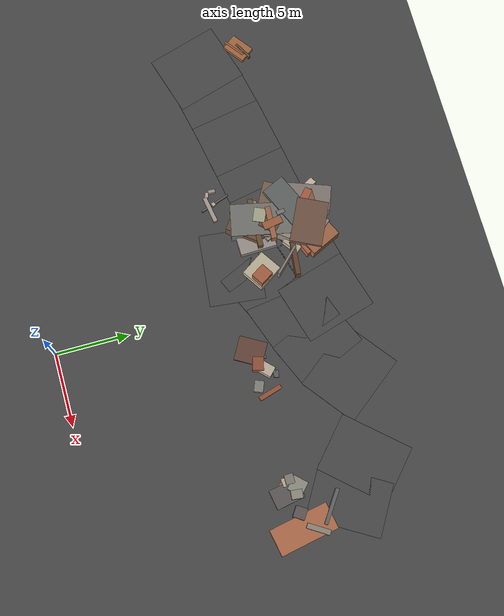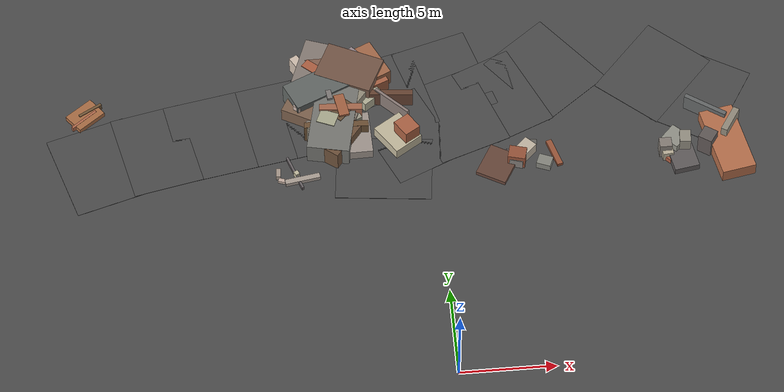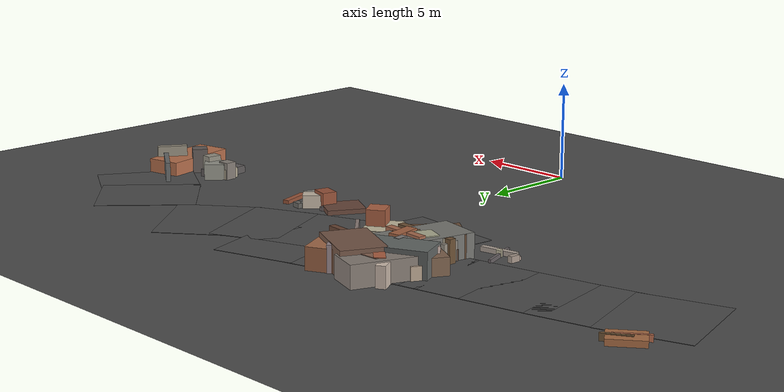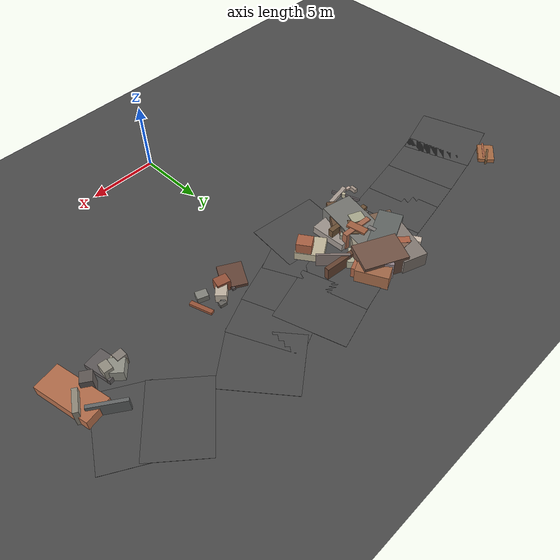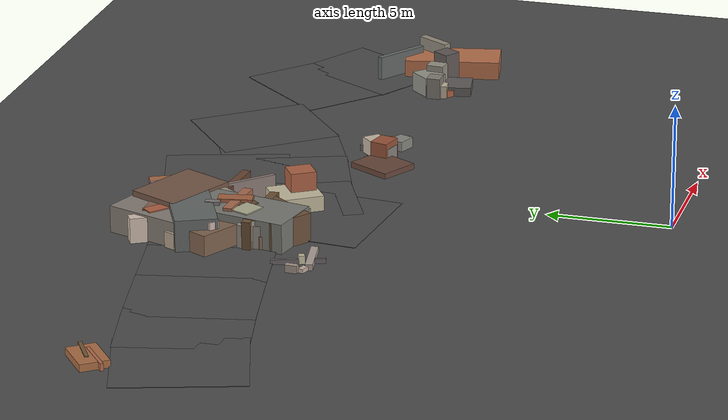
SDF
<sdf version="1.6">
 <world name="navitas_arena">
  <model name="ground_plane">
   <static>true</static>
   <link name="link">
    <collision name="collision">
     <geometry><plane><normal>0 0 1</normal><size>400 400</size></plane></geometry>
     <surface><friction><ode><mu>0.800</mu><mu2>0.800</mu2></ode></friction></surface>
    </collision>
    <visual name="visual">
     <cast_shadows>false</cast_shadows>
     <geometry><plane><normal>0 0 1</normal><size>400 400</size></plane></geometry>
     <material>
      <specular>0.04 0.04 0.04 1</specular>
      <script>
       <uri>file://media/materials/scripts/navitas_asphalt.material</uri>
       <name>Navitas/RealArenaAsphalt</name>
      </script>
     </material>
    </visual>
   </link>
  </model>
  <model name="road_orta_1_17">
   <static>true</static>
   <pose>-17.463 14.228 0.040 0 0 0.300</pose>
   <link name="link">
    <collision name="col"><geometry><box><size>4.249 5.000 0.020</size></box></geometry></collision>
    <visual name="vis">
     <geometry><box><size>4.249 5.000 0.020</size></box></geometry>
     <material>
      <specular>0.04 0.04 0.04 1</specular>
      <script>
       <uri>file://media/materials/scripts/navitas_asphalt.material</uri>
       <name>Navitas/RealArenaAsphalt</name>
      </script>
     </material>
    </visual>
   </link>
  </model>
  <model name="road_orta_1_18">
   <static>true</static>
   <pose>-14.494 15.023 0.040 0 0 0.216</pose>
   <link name="link">
    <collision name="col"><geometry><box><size>3.704 5.000 0.020</size></box></geometry></collision>
    <visual name="vis">
     <geometry><box><size>3.704 5.000 0.020</size></box></geometry>
     <material>
      <specular>0.04 0.04 0.04 1</specular>
      <script>
       <uri>file://media/materials/scripts/navitas_asphalt.material</uri>
       <name>Navitas/RealArenaAsphalt</name>
      </script>
     </material>
    </visual>
   </link>
  </model>
  <model name="road_orta_1_19">
   <static>true</static>
   <pose>-11.645 15.608 0.040 0 0 0.190</pose>
   <link name="link">
    <collision name="col"><geometry><box><size>3.913 5.000 0.020</size></box></geometry></collision>
    <visual name="vis">
     <geometry><box><size>3.913 5.000 0.020</size></box></geometry>
     <material>
      <specular>0.04 0.04 0.04 1</specular>
      <script>
       <uri>file://media/materials/scripts/navitas_asphalt.material</uri>
       <name>Navitas/RealArenaAsphalt</name>
      </script>
     </material>
    </visual>
   </link>
  </model>
  <model name="road_orta_1_20">
   <static>true</static>
   <pose>-8.689 16.164 0.040 0 0 0.183</pose>
   <link name="link">
    <collision name="col"><geometry><box><size>3.902 5.000 0.020</size></box></geometry></collision>
    <visual name="vis">
     <geometry><box><size>3.902 5.000 0.020</size></box></geometry>
     <material>
      <specular>0.04 0.04 0.04 1</specular>
      <script>
       <uri>file://media/materials/scripts/navitas_asphalt.material</uri>
       <name>Navitas/RealArenaAsphalt</name>
      </script>
     </material>
    </visual>
   </link>
  </model>
  <model name="road_orta_1_21">
   <static>true</static>
   <pose>-5.854 16.703 0.040 0 0 0.193</pose>
   <link name="link">
    <collision name="col"><geometry><box><size>3.670 5.000 0.020</size></box></geometry></collision>
    <visual name="vis">
     <geometry><box><size>3.670 5.000 0.020</size></box></geometry>
     <material>
      <specular>0.04 0.04 0.04 1</specular>
      <script>
       <uri>file://media/materials/scripts/navitas_asphalt.material</uri>
       <name>Navitas/RealArenaAsphalt</name>
      </script>
     </material>
    </visual>
   </link>
  </model>
  <model name="road_orta_1_22">
   <static>true</static>
   <pose>-2.560 17.461 0.040 0 0 0.249</pose>
   <link name="link">
    <collision name="col"><geometry><box><size>4.891 5.000 0.020</size></box></geometry></collision>
    <visual name="vis">
     <geometry><box><size>4.891 5.000 0.020</size></box></geometry>
     <material>
      <specular>0.04 0.04 0.04 1</specular>
      <script>
       <uri>file://media/materials/scripts/navitas_asphalt.material</uri>
       <name>Navitas/RealArenaAsphalt</name>
      </script>
     </material>
    </visual>
   </link>
  </model>
  <model name="road_orta_1_23">
   <static>true</static>
   <pose>0.905 18.411 0.040 0 0 0.291</pose>
   <link name="link">
    <collision name="col"><geometry><box><size>4.097 5.000 0.020</size></box></geometry></collision>
    <visual name="vis">
     <geometry><box><size>4.097 5.000 0.020</size></box></geometry>
     <material>
      <specular>0.04 0.04 0.04 1</specular>
      <script>
       <uri>file://media/materials/scripts/navitas_asphalt.material</uri>
       <name>Navitas/RealArenaAsphalt</name>
      </script>
     </material>
    </visual>
   </link>
  </model>
  <model name="road_orta_2_14">
   <static>true</static>
   <pose>-2.742 12.875 0.040 0 0 1.471</pose>
   <link name="link">
    <collision name="col"><geometry><box><size>3.813 5.000 0.020</size></box></geometry></collision>
    <visual name="vis">
     <geometry><box><size>3.813 5.000 0.020</size></box></geometry>
     <material>
      <specular>0.04 0.04 0.04 1</specular>
      <script>
       <uri>file://media/materials/scripts/navitas_asphalt.material</uri>
       <name>Navitas/RealArenaAsphalt</name>
      </script>
     </material>
    </visual>
   </link>
  </model>
  <model name="road_orta_2_15">
   <static>true</static>
   <pose>-1.351 14.896 0.040 0 0 0.430</pose>
   <link name="link">
    <collision name="col"><geometry><box><size>3.643 5.000 0.020</size></box></geometry></collision>
    <visual name="vis">
     <geometry><box><size>3.643 5.000 0.020</size></box></geometry>
     <material>
      <specular>0.04 0.04 0.04 1</specular>
      <script>
       <uri>file://media/materials/scripts/navitas_asphalt.material</uri>
       <name>Navitas/RealArenaAsphalt</name>
      </script>
     </material>
    </visual>
   </link>
  </model>
  <model name="road_orta_2_16">
   <static>true</static>
   <pose>1.315 15.986 0.040 0 0 0.349</pose>
   <link name="link">
    <collision name="col"><geometry><box><size>3.924 5.000 0.020</size></box></geometry></collision>
    <visual name="vis">
     <geometry><box><size>3.924 5.000 0.020</size></box></geometry>
     <material>
      <specular>0.04 0.04 0.04 1</specular>
      <script>
       <uri>file://media/materials/scripts/navitas_asphalt.material</uri>
       <name>Navitas/RealArenaAsphalt</name>
      </script>
     </material>
    </visual>
   </link>
  </model>
  <model name="road_orta_2_17">
   <static>true</static>
   <pose>3.850 17.002 0.040 0 0 0.420</pose>
   <link name="link">
    <collision name="col"><geometry><box><size>3.341 5.000 0.020</size></box></geometry></collision>
    <visual name="vis">
     <geometry><box><size>3.341 5.000 0.020</size></box></geometry>
     <material>
      <specular>0.04 0.04 0.04 1</specular>
      <script>
       <uri>file://media/materials/scripts/navitas_asphalt.material</uri>
       <name>Navitas/RealArenaAsphalt</name>
      </script>
     </material>
    </visual>
   </link>
  </model>
  <model name="road_orta_2_18">
   <static>true</static>
   <pose>6.253 18.516 0.040 0 0 0.667</pose>
   <link name="link">
    <collision name="col"><geometry><box><size>4.181 5.000 0.020</size></box></geometry></collision>
    <visual name="vis">
     <geometry><box><size>4.181 5.000 0.020</size></box></geometry>
     <material>
      <specular>0.04 0.04 0.04 1</specular>
      <script>
       <uri>file://media/materials/scripts/navitas_asphalt.material</uri>
       <name>Navitas/RealArenaAsphalt</name>
      </script>
     </material>
    </visual>
   </link>
  </model>
  <model name="road_orta_3_18">
   <static>true</static>
   <pose>14.255 16.153 0.040 0 0 2.613</pose>
   <link name="link">
    <collision name="col"><geometry><box><size>3.611 5.000 0.020</size></box></geometry></collision>
    <visual name="vis">
     <geometry><box><size>3.611 5.000 0.020</size></box></geometry>
     <material>
      <specular>0.04 0.04 0.04 1</specular>
      <script>
       <uri>file://media/materials/scripts/navitas_asphalt.material</uri>
       <name>Navitas/RealArenaAsphalt</name>
      </script>
     </material>
    </visual>
   </link>
  </model>
  <model name="road_orta_3_19">
   <static>true</static>
   <pose>11.930 17.854 0.040 0 0 2.420</pose>
   <link name="link">
    <collision name="col"><geometry><box><size>3.978 5.000 0.020</size></box></geometry></collision>
    <visual name="vis">
     <geometry><box><size>3.978 5.000 0.020</size></box></geometry>
     <material>
      <specular>0.04 0.04 0.04 1</specular>
      <script>
       <uri>file://media/materials/scripts/navitas_asphalt.material</uri>
       <name>Navitas/RealArenaAsphalt</name>
      </script>
     </material>
    </visual>
   </link>
  </model>
  <model name="blk_orta_1_2_1">
   <static>true</static>
   <pose>-5.312 15.661 0.000 0 0 0</pose>
   <link name="link">
    <collision name="col_0">
     <pose>0.254 -0.545 0.590 0.000 0.000 3.106</pose>
     <geometry><box><size>3.360 0.351 1.181</size></box></geometry>
    </collision>
    <visual name="vis_0">
     <pose>0.254 -0.545 0.590 0.000 0.000 3.106</pose>
     <geometry><box><size>3.360 0.351 1.181</size></box></geometry>
     <material>
      <ambient>0.40 0.29 0.20 1</ambient>
      <diffuse>0.43 0.32 0.21 1</diffuse>
      <specular>0.05 0.05 0.045 1</specular>
     </material>
    </visual>
    <collision name="col_1">
     <pose>0.146 -1.053 0.588 0.000 0.000 0.926</pose>
     <geometry><box><size>2.415 1.894 1.176</size></box></geometry>
    </collision>
    <visual name="vis_1">
     <pose>0.146 -1.053 0.588 0.000 0.000 0.926</pose>
     <geometry><box><size>2.415 1.894 1.176</size></box></geometry>
     <material>
      <ambient>0.40 0.29 0.21 1</ambient>
      <diffuse>0.43 0.32 0.23 1</diffuse>
      <specular>0.05 0.05 0.045 1</specular>
     </material>
    </visual>
    <collision name="col_2">
     <pose>-0.459 -0.871 0.458 0.000 0.000 2.089</pose>
     <geometry><box><size>0.345 0.604 0.917</size></box></geometry>
    </collision>
    <visual name="vis_2">
     <pose>-0.459 -0.871 0.458 0.000 0.000 2.089</pose>
     <geometry><box><size>0.345 0.604 0.917</size></box></geometry>
     <material>
      <ambient>0.36 0.34 0.33 1</ambient>
      <diffuse>0.39 0.37 0.36 1</diffuse>
      <specular>0.05 0.05 0.045 1</specular>
     </material>
    </visual>
    <collision name="col_3">
     <pose>0.706 -0.189 0.409 0.000 0.000 2.138</pose>
     <geometry><box><size>0.918 1.057 0.819</size></box></geometry>
    </collision>
    <visual name="vis_3">
     <pose>0.706 -0.189 0.409 0.000 0.000 2.138</pose>
     <geometry><box><size>0.918 1.057 0.819</size></box></geometry>
     <material>
      <ambient>0.50 0.33 0.28 1</ambient>
      <diffuse>0.54 0.36 0.30 1</diffuse>
      <specular>0.05 0.05 0.045 1</specular>
     </material>
    </visual>
    <collision name="col_4">
     <pose>0.607 0.561 0.675 0.000 0.000 1.739</pose>
     <geometry><box><size>1.355 0.541 1.351</size></box></geometry>
    </collision>
    <visual name="vis_4">
     <pose>0.607 0.561 0.675 0.000 0.000 1.739</pose>
     <geometry><box><size>1.355 0.541 1.351</size></box></geometry>
     <material>
      <ambient>0.60 0.36 0.24 1</ambient>
      <diffuse>0.65 0.39 0.26 1</diffuse>
      <specular>0.05 0.05 0.045 1</specular>
     </material>
    </visual>
    <collision name="col_5">
     <pose>0.291 -0.194 0.531 0.000 0.000 2.700</pose>
     <geometry><box><size>1.134 1.368 1.061</size></box></geometry>
    </collision>
    <visual name="vis_5">
     <pose>0.291 -0.194 0.531 0.000 0.000 2.700</pose>
     <geometry><box><size>1.134 1.368 1.061</size></box></geometry>
     <material>
      <ambient>0.38 0.28 0.17 1</ambient>
      <diffuse>0.41 0.30 0.18 1</diffuse>
      <specular>0.05 0.05 0.045 1</specular>
     </material>
    </visual>
    <collision name="col_6">
     <pose>0.146 0.049 0.601 0.000 0.000 1.367</pose>
     <geometry><box><size>4.439 2.226 1.202</size></box></geometry>
    </collision>
    <visual name="vis_6">
     <pose>0.146 0.049 0.601 0.000 0.000 1.367</pose>
     <geometry><box><size>4.439 2.226 1.202</size></box></geometry>
     <material>
      <ambient>0.44 0.43 0.41 1</ambient>
      <diffuse>0.47 0.47 0.45 1</diffuse>
      <specular>0.05 0.05 0.045 1</specular>
     </material>
    </visual>
    <collision name="col_7">
     <pose>-0.225 -0.447 0.488 0.000 0.000 3.233</pose>
     <geometry><box><size>2.078 0.925 0.976</size></box></geometry>
    </collision>
    <visual name="vis_7">
     <pose>-0.225 -0.447 0.488 0.000 0.000 3.233</pose>
     <geometry><box><size>2.078 0.925 0.976</size></box></geometry>
     <material>
      <ambient>0.55 0.52 0.48 1</ambient>
      <diffuse>0.59 0.56 0.52 1</diffuse>
      <specular>0.05 0.05 0.045 1</specular>
     </material>
    </visual>
   </link>
  </model>
  <model name="blk_orta_1_2_3">
   <static>true</static>
   <pose>-4.240 17.625 0.000 0 0 0</pose>
   <link name="link">
    <collision name="col_0">
     <pose>0.515 0.400 0.336 0.000 0.000 2.220</pose>
     <geometry><box><size>2.631 1.244 0.672</size></box></geometry>
    </collision>
    <visual name="vis_0">
     <pose>0.515 0.400 0.336 0.000 0.000 2.220</pose>
     <geometry><box><size>2.631 1.244 0.672</size></box></geometry>
     <material>
      <ambient>0.66 0.65 0.55 1</ambient>
      <diffuse>0.71 0.70 0.60 1</diffuse>
      <specular>0.05 0.05 0.045 1</specular>
     </material>
    </visual>
    <collision name="col_1">
     <pose>-0.767 -1.575 0.587 0.000 0.000 0.911</pose>
     <geometry><box><size>3.622 1.369 1.173</size></box></geometry>
    </collision>
    <visual name="vis_1">
     <pose>-0.767 -1.575 0.587 0.000 0.000 0.911</pose>
     <geometry><box><size>3.622 1.369 1.173</size></box></geometry>
     <material>
      <ambient>0.55 0.52 0.46 1</ambient>
      <diffuse>0.59 0.56 0.49 1</diffuse>
      <specular>0.05 0.05 0.045 1</specular>
     </material>
    </visual>
    <collision name="col_2">
     <pose>0.837 1.666 0.640 0.000 0.000 2.293</pose>
     <geometry><box><size>1.719 0.219 1.281</size></box></geometry>
    </collision>
    <visual name="vis_2">
     <pose>0.837 1.666 0.640 0.000 0.000 2.293</pose>
     <geometry><box><size>1.719 0.219 1.281</size></box></geometry>
     <material>
      <ambient>0.54 0.49 0.51 1</ambient>
      <diffuse>0.59 0.53 0.55 1</diffuse>
      <specular>0.05 0.05 0.045 1</specular>
     </material>
    </visual>
    <collision name="col_3">
     <pose>-1.059 -0.667 0.670 0.000 0.000 1.709</pose>
     <geometry><box><size>0.567 0.281 1.340</size></box></geometry>
    </collision>
    <visual name="vis_3">
     <pose>-1.059 -0.667 0.670 0.000 0.000 1.709</pose>
     <geometry><box><size>0.567 0.281 1.340</size></box></geometry>
     <material>
      <ambient>0.47 0.45 0.44 1</ambient>
      <diffuse>0.50 0.48 0.47 1</diffuse>
      <specular>0.05 0.05 0.045 1</specular>
     </material>
    </visual>
    <collision name="col_4">
     <pose>-0.609 0.748 0.633 0.000 0.000 1.630</pose>
     <geometry><box><size>0.819 0.771 1.265</size></box></geometry>
    </collision>
    <visual name="vis_4">
     <pose>-0.609 0.748 0.633 0.000 0.000 1.630</pose>
     <geometry><box><size>0.819 0.771 1.265</size></box></geometry>
     <material>
      <ambient>0.32 0.30 0.29 1</ambient>
      <diffuse>0.34 0.33 0.31 1</diffuse>
      <specular>0.05 0.05 0.045 1</specular>
     </material>
    </visual>
    <collision name="col_5">
     <pose>-1.570 0.026 0.661 0.000 0.000 0.431</pose>
     <geometry><box><size>3.373 1.664 1.322</size></box></geometry>
    </collision>
    <visual name="vis_5">
     <pose>-1.570 0.026 0.661 0.000 0.000 0.431</pose>
     <geometry><box><size>3.373 1.664 1.322</size></box></geometry>
     <material>
      <ambient>0.37 0.38 0.37 1</ambient>
      <diffuse>0.39 0.41 0.40 1</diffuse>
      <specular>0.05 0.05 0.045 1</specular>
     </material>
    </visual>
    <collision name="col_6">
     <pose>-0.291 0.848 0.628 0.000 0.000 1.247</pose>
     <geometry><box><size>0.342 0.499 1.256</size></box></geometry>
    </collision>
    <visual name="vis_6">
     <pose>-0.291 0.848 0.628 0.000 0.000 1.247</pose>
     <geometry><box><size>0.342 0.499 1.256</size></box></geometry>
     <material>
      <ambient>0.49 0.47 0.47 1</ambient>
      <diffuse>0.53 0.51 0.51 1</diffuse>
      <specular>0.05 0.05 0.045 1</specular>
     </material>
    </visual>
   </link>
  </model>
  <model name="blk_orta_1_2_4">
   <static>true</static>
   <pose>-2.765 15.514 0.000 0 0 0</pose>
   <link name="link">
    <collision name="col_0">
     <pose>1.363 -0.908 0.721 0.000 0.000 3.716</pose>
     <geometry><box><size>0.914 1.031 1.442</size></box></geometry>
    </collision>
    <visual name="vis_0">
     <pose>1.363 -0.908 0.721 0.000 0.000 3.716</pose>
     <geometry><box><size>0.914 1.031 1.442</size></box></geometry>
     <material>
      <ambient>0.63 0.36 0.25 1</ambient>
      <diffuse>0.68 0.39 0.27 1</diffuse>
      <specular>0.05 0.05 0.045 1</specular>
     </material>
    </visual>
    <collision name="col_1">
     <pose>0.729 1.002 0.532 0.000 0.000 2.355</pose>
     <geometry><box><size>2.231 0.157 1.064</size></box></geometry>
    </collision>
    <visual name="vis_1">
     <pose>0.729 1.002 0.532 0.000 0.000 2.355</pose>
     <geometry><box><size>2.231 0.157 1.064</size></box></geometry>
     <material>
      <ambient>0.51 0.46 0.44 1</ambient>
      <diffuse>0.55 0.49 0.47 1</diffuse>
      <specular>0.05 0.05 0.045 1</specular>
     </material>
    </visual>
    <collision name="col_2">
     <pose>-1.560 0.160 0.540 0.000 0.000 2.726</pose>
     <geometry><box><size>0.757 0.599 1.079</size></box></geometry>
    </collision>
    <visual name="vis_2">
     <pose>-1.560 0.160 0.540 0.000 0.000 2.726</pose>
     <geometry><box><size>0.757 0.599 1.079</size></box></geometry>
     <material>
      <ambient>0.48 0.44 0.40 1</ambient>
      <diffuse>0.52 0.48 0.43 1</diffuse>
      <specular>0.05 0.05 0.045 1</specular>
     </material>
    </visual>
    <collision name="col_3">
     <pose>-1.229 -0.627 0.300 0.000 0.000 1.598</pose>
     <geometry><box><size>2.512 1.434 0.599</size></box></geometry>
    </collision>
    <visual name="vis_3">
     <pose>-1.229 -0.627 0.300 0.000 0.000 1.598</pose>
     <geometry><box><size>2.512 1.434 0.599</size></box></geometry>
     <material>
      <ambient>0.58 0.55 0.52 1</ambient>
      <diffuse>0.63 0.59 0.56 1</diffuse>
      <specular>0.05 0.05 0.045 1</specular>
     </material>
    </visual>
    <collision name="col_4">
     <pose>0.727 1.580 0.482 0.000 0.000 3.048</pose>
     <geometry><box><size>2.291 0.334 0.964</size></box></geometry>
    </collision>
    <visual name="vis_4">
     <pose>0.727 1.580 0.482 0.000 0.000 3.048</pose>
     <geometry><box><size>2.291 0.334 0.964</size></box></geometry>
     <material>
      <ambient>0.38 0.25 0.18 1</ambient>
      <diffuse>0.41 0.27 0.20 1</diffuse>
      <specular>0.05 0.05 0.045 1</specular>
     </material>
    </visual>
    <collision name="col_5">
     <pose>0.900 -0.801 0.336 0.000 0.000 2.162</pose>
     <geometry><box><size>1.902 1.660 0.672</size></box></geometry>
    </collision>
    <visual name="vis_5">
     <pose>0.900 -0.801 0.336 0.000 0.000 2.162</pose>
     <geometry><box><size>1.902 1.660 0.672</size></box></geometry>
     <material>
      <ambient>0.71 0.68 0.58 1</ambient>
      <diffuse>0.77 0.73 0.62 1</diffuse>
      <specular>0.05 0.05 0.045 1</specular>
     </material>
    </visual>
   </link>
  </model>
  <model name="blk_orta_1_2_5">
   <static>true</static>
   <pose>-4.666 17.726 0.000 0 0 0</pose>
   <link name="link">
    <collision name="col_0">
     <pose>0.537 0.926 0.664 0.000 0.000 2.698</pose>
     <geometry><box><size>3.102 2.174 1.327</size></box></geometry>
    </collision>
    <visual name="vis_0">
     <pose>0.537 0.926 0.664 0.000 0.000 2.698</pose>
     <geometry><box><size>3.102 2.174 1.327</size></box></geometry>
     <material>
      <ambient>0.43 0.31 0.26 1</ambient>
      <diffuse>0.46 0.34 0.28 1</diffuse>
      <specular>0.05 0.05 0.045 1</specular>
     </material>
    </visual>
    <collision name="col_1">
     <pose>-1.184 0.388 0.376 0.000 0.000 2.083</pose>
     <geometry><box><size>1.274 1.302 0.752</size></box></geometry>
    </collision>
    <visual name="vis_1">
     <pose>-1.184 0.388 0.376 0.000 0.000 2.083</pose>
     <geometry><box><size>1.274 1.302 0.752</size></box></geometry>
     <material>
      <ambient>0.62 0.35 0.26 1</ambient>
      <diffuse>0.67 0.37 0.28 1</diffuse>
      <specular>0.05 0.05 0.045 1</specular>
     </material>
    </visual>
    <collision name="col_2">
     <pose>1.093 0.269 0.420 0.000 0.000 3.538</pose>
     <geometry><box><size>2.737 1.162 0.841</size></box></geometry>
    </collision>
    <visual name="vis_2">
     <pose>1.093 0.269 0.420 0.000 0.000 3.538</pose>
     <geometry><box><size>2.737 1.162 0.841</size></box></geometry>
     <material>
      <ambient>0.63 0.37 0.26 1</ambient>
      <diffuse>0.68 0.40 0.28 1</diffuse>
      <specular>0.05 0.05 0.045 1</specular>
     </material>
    </visual>
    <collision name="col_3">
     <pose>-0.076 1.151 0.374 0.000 0.000 3.979</pose>
     <geometry><box><size>0.582 0.667 0.747</size></box></geometry>
    </collision>
    <visual name="vis_3">
     <pose>-0.076 1.151 0.374 0.000 0.000 3.979</pose>
     <geometry><box><size>0.582 0.667 0.747</size></box></geometry>
     <material>
      <ambient>0.61 0.61 0.56 1</ambient>
      <diffuse>0.66 0.66 0.60 1</diffuse>
      <specular>0.05 0.05 0.045 1</specular>
     </material>
    </visual>
    <collision name="col_4">
     <pose>0.535 -0.542 0.407 0.000 0.000 3.058</pose>
     <geometry><box><size>0.566 0.584 0.813</size></box></geometry>
    </collision>
    <visual name="vis_4">
     <pose>0.535 -0.542 0.407 0.000 0.000 3.058</pose>
     <geometry><box><size>0.566 0.584 0.813</size></box></geometry>
     <material>
      <ambient>0.44 0.29 0.20 1</ambient>
      <diffuse>0.48 0.32 0.22 1</diffuse>
      <specular>0.05 0.05 0.045 1</specular>
     </material>
    </visual>
    <collision name="col_5">
     <pose>0.641 0.892 0.543 0.000 0.000 3.589</pose>
     <geometry><box><size>3.560 2.227 1.085</size></box></geometry>
    </collision>
    <visual name="vis_5">
     <pose>0.641 0.892 0.543 0.000 0.000 3.589</pose>
     <geometry><box><size>3.560 2.227 1.085</size></box></geometry>
     <material>
      <ambient>0.60 0.38 0.27 1</ambient>
      <diffuse>0.65 0.42 0.29 1</diffuse>
      <specular>0.05 0.05 0.045 1</specular>
     </material>
    </visual>
   </link>
  </model>
  <model name="blk_orta_1_2_6">
   <static>true</static>
   <pose>-5.476 15.686 0.000 0 0 0</pose>
   <link name="link">
    <collision name="col_0">
     <pose>1.188 -0.022 0.474 0.000 0.000 0.460</pose>
     <geometry><box><size>1.109 0.610 0.948</size></box></geometry>
    </collision>
    <visual name="vis_0">
     <pose>1.188 -0.022 0.474 0.000 0.000 0.460</pose>
     <geometry><box><size>1.109 0.610 0.948</size></box></geometry>
     <material>
      <ambient>0.58 0.56 0.50 1</ambient>
      <diffuse>0.62 0.61 0.54 1</diffuse>
      <specular>0.05 0.05 0.045 1</specular>
     </material>
    </visual>
    <collision name="col_1">
     <pose>0.212 0.396 0.419 0.000 0.000 1.497</pose>
     <geometry><box><size>2.647 0.745 0.839</size></box></geometry>
    </collision>
    <visual name="vis_1">
     <pose>0.212 0.396 0.419 0.000 0.000 1.497</pose>
     <geometry><box><size>2.647 0.745 0.839</size></box></geometry>
     <material>
      <ambient>0.32 0.30 0.29 1</ambient>
      <diffuse>0.35 0.32 0.31 1</diffuse>
      <specular>0.05 0.05 0.045 1</specular>
     </material>
    </visual>
    <collision name="col_2">
     <pose>-0.003 -0.163 0.625 0.000 0.000 1.171</pose>
     <geometry><box><size>0.823 0.981 1.249</size></box></geometry>
    </collision>
    <visual name="vis_2">
     <pose>-0.003 -0.163 0.625 0.000 0.000 1.171</pose>
     <geometry><box><size>0.823 0.981 1.249</size></box></geometry>
     <material>
      <ambient>0.63 0.63 0.53 1</ambient>
      <diffuse>0.68 0.68 0.57 1</diffuse>
      <specular>0.05 0.05 0.045 1</specular>
     </material>
    </visual>
    <collision name="col_3">
     <pose>0.073 -0.224 0.283 0.000 0.000 0.655</pose>
     <geometry><box><size>2.856 0.209 0.566</size></box></geometry>
    </collision>
    <visual name="vis_3">
     <pose>0.073 -0.224 0.283 0.000 0.000 0.655</pose>
     <geometry><box><size>2.856 0.209 0.566</size></box></geometry>
     <material>
      <ambient>0.46 0.36 0.30 1</ambient>
      <diffuse>0.50 0.39 0.32 1</diffuse>
      <specular>0.05 0.05 0.045 1</specular>
     </material>
    </visual>
    <collision name="col_4">
     <pose>-0.652 0.599 0.423 0.000 0.000 -1.207</pose>
     <geometry><box><size>0.802 0.713 0.846</size></box></geometry>
    </collision>
    <visual name="vis_4">
     <pose>-0.652 0.599 0.423 0.000 0.000 -1.207</pose>
     <geometry><box><size>0.802 0.713 0.846</size></box></geometry>
     <material>
      <ambient>0.69 0.66 0.57 1</ambient>
      <diffuse>0.75 0.71 0.61 1</diffuse>
      <specular>0.05 0.05 0.045 1</specular>
     </material>
    </visual>
    <collision name="col_5">
     <pose>0.816 0.288 0.618 0.000 0.000 0.827</pose>
     <geometry><box><size>1.252 0.746 1.237</size></box></geometry>
    </collision>
    <visual name="vis_5">
     <pose>0.816 0.288 0.618 0.000 0.000 0.827</pose>
     <geometry><box><size>1.252 0.746 1.237</size></box></geometry>
     <material>
      <ambient>0.39 0.29 0.20 1</ambient>
      <diffuse>0.42 0.32 0.22 1</diffuse>
      <specular>0.05 0.05 0.045 1</specular>
     </material>
    </visual>
    <collision name="col_6">
     <pose>0.720 0.436 0.662 0.000 0.000 -0.057</pose>
     <geometry><box><size>2.250 0.375 1.324</size></box></geometry>
    </collision>
    <visual name="vis_6">
     <pose>0.720 0.436 0.662 0.000 0.000 -0.057</pose>
     <geometry><box><size>2.250 0.375 1.324</size></box></geometry>
     <material>
      <ambient>0.61 0.39 0.29 1</ambient>
      <diffuse>0.66 0.42 0.31 1</diffuse>
      <specular>0.05 0.05 0.045 1</specular>
     </material>
    </visual>
    <collision name="col_7">
     <pose>0.557 -0.734 0.325 0.000 0.000 1.049</pose>
     <geometry><box><size>0.447 0.426 0.651</size></box></geometry>
    </collision>
    <visual name="vis_7">
     <pose>0.557 -0.734 0.325 0.000 0.000 1.049</pose>
     <geometry><box><size>0.447 0.426 0.651</size></box></geometry>
     <material>
      <ambient>0.56 0.57 0.49 1</ambient>
      <diffuse>0.60 0.62 0.53 1</diffuse>
      <specular>0.05 0.05 0.045 1</specular>
     </material>
    </visual>
    <collision name="col_8">
     <pose>0.023 0.579 0.349 0.000 0.000 -0.437</pose>
     <geometry><box><size>0.330 0.621 0.697</size></box></geometry>
    </collision>
    <visual name="vis_8">
     <pose>0.023 0.579 0.349 0.000 0.000 -0.437</pose>
     <geometry><box><size>0.330 0.621 0.697</size></box></geometry>
     <material>
      <ambient>0.44 0.41 0.37 1</ambient>
      <diffuse>0.48 0.45 0.40 1</diffuse>
      <specular>0.05 0.05 0.045 1</specular>
     </material>
    </visual>
   </link>
  </model>
  <model name="blk_orta_1_2_7">
   <static>true</static>
   <pose>-6.182 17.834 0.000 0 0 0</pose>
   <link name="link">
    <collision name="col_0">
     <pose>0.237 1.014 0.569 0.000 0.000 2.421</pose>
     <geometry><box><size>1.304 0.530 1.138</size></box></geometry>
    </collision>
    <visual name="vis_0">
     <pose>0.237 1.014 0.569 0.000 0.000 2.421</pose>
     <geometry><box><size>1.304 0.530 1.138</size></box></geometry>
     <material>
      <ambient>0.64 0.35 0.24 1</ambient>
      <diffuse>0.69 0.38 0.26 1</diffuse>
      <specular>0.05 0.05 0.045 1</specular>
     </material>
    </visual>
    <collision name="col_1">
     <pose>0.603 -1.130 0.425 0.000 0.000 2.696</pose>
     <geometry><box><size>0.478 0.362 0.849</size></box></geometry>
    </collision>
    <visual name="vis_1">
     <pose>0.603 -1.130 0.425 0.000 0.000 2.696</pose>
     <geometry><box><size>0.478 0.362 0.849</size></box></geometry>
     <material>
      <ambient>0.67 0.65 0.53 1</ambient>
      <diffuse>0.73 0.70 0.57 1</diffuse>
      <specular>0.05 0.05 0.045 1</specular>
     </material>
    </visual>
    <collision name="col_2">
     <pose>-0.719 -1.316 0.602 0.000 0.000 0.879</pose>
     <geometry><box><size>0.523 0.416 1.203</size></box></geometry>
    </collision>
    <visual name="vis_2">
     <pose>-0.719 -1.316 0.602 0.000 0.000 0.879</pose>
     <geometry><box><size>0.523 0.416 1.203</size></box></geometry>
     <material>
      <ambient>0.75 0.67 0.63 1</ambient>
      <diffuse>0.81 0.72 0.68 1</diffuse>
      <specular>0.05 0.05 0.045 1</specular>
     </material>
    </visual>
    <collision name="col_3">
     <pose>-0.959 0.089 0.349 0.000 0.000 1.109</pose>
     <geometry><box><size>0.511 0.544 0.698</size></box></geometry>
    </collision>
    <visual name="vis_3">
     <pose>-0.959 0.089 0.349 0.000 0.000 1.109</pose>
     <geometry><box><size>0.511 0.544 0.698</size></box></geometry>
     <material>
      <ambient>0.67 0.59 0.52 1</ambient>
      <diffuse>0.72 0.64 0.56 1</diffuse>
      <specular>0.05 0.05 0.045 1</specular>
     </material>
    </visual>
    <collision name="col_4">
     <pose>0.200 1.184 0.547 0.000 0.000 1.227</pose>
     <geometry><box><size>3.208 1.730 1.093</size></box></geometry>
    </collision>
    <visual name="vis_4">
     <pose>0.200 1.184 0.547 0.000 0.000 1.227</pose>
     <geometry><box><size>3.208 1.730 1.093</size></box></geometry>
     <material>
      <ambient>0.49 0.45 0.43 1</ambient>
      <diffuse>0.53 0.49 0.46 1</diffuse>
      <specular>0.05 0.05 0.045 1</specular>
     </material>
    </visual>
    <collision name="col_5">
     <pose>0.968 1.268 0.452 0.000 0.000 3.160</pose>
     <geometry><box><size>1.437 0.955 0.904</size></box></geometry>
    </collision>
    <visual name="vis_5">
     <pose>0.968 1.268 0.452 0.000 0.000 3.160</pose>
     <geometry><box><size>1.437 0.955 0.904</size></box></geometry>
     <material>
      <ambient>0.74 0.70 0.61 1</ambient>
      <diffuse>0.80 0.76 0.66 1</diffuse>
      <specular>0.05 0.05 0.045 1</specular>
     </material>
    </visual>
    <collision name="col_6">
     <pose>1.122 0.256 0.601 0.000 0.000 2.336</pose>
     <geometry><box><size>1.166 1.058 1.201</size></box></geometry>
    </collision>
    <visual name="vis_6">
     <pose>1.122 0.256 0.601 0.000 0.000 2.336</pose>
     <geometry><box><size>1.166 1.058 1.201</size></box></geometry>
     <material>
      <ambient>0.40 0.27 0.22 1</ambient>
      <diffuse>0.43 0.29 0.23 1</diffuse>
      <specular>0.05 0.05 0.045 1</specular>
     </material>
    </visual>
    <collision name="col_7">
     <pose>-0.091 -0.506 0.447 0.000 0.000 1.075</pose>
     <geometry><box><size>2.996 1.960 0.894</size></box></geometry>
    </collision>
    <visual name="vis_7">
     <pose>-0.091 -0.506 0.447 0.000 0.000 1.075</pose>
     <geometry><box><size>2.996 1.960 0.894</size></box></geometry>
     <material>
      <ambient>0.46 0.36 0.29 1</ambient>
      <diffuse>0.50 0.39 0.31 1</diffuse>
      <specular>0.05 0.05 0.045 1</specular>
     </material>
    </visual>
    <collision name="col_8">
     <pose>0.273 1.373 0.563 0.000 0.000 3.153</pose>
     <geometry><box><size>0.967 0.510 1.125</size></box></geometry>
    </collision>
    <visual name="vis_8">
     <pose>0.273 1.373 0.563 0.000 0.000 3.153</pose>
     <geometry><box><size>0.967 0.510 1.125</size></box></geometry>
     <material>
      <ambient>0.49 0.36 0.30 1</ambient>
      <diffuse>0.53 0.39 0.32 1</diffuse>
      <specular>0.05 0.05 0.045 1</specular>
     </material>
    </visual>
    <collision name="col_9">
     <pose>-0.591 1.531 0.509 0.000 0.000 2.084</pose>
     <geometry><box><size>0.974 0.466 1.017</size></box></geometry>
    </collision>
    <visual name="vis_9">
     <pose>-0.591 1.531 0.509 0.000 0.000 2.084</pose>
     <geometry><box><size>0.974 0.466 1.017</size></box></geometry>
     <material>
      <ambient>0.76 0.69 0.64 1</ambient>
      <diffuse>0.82 0.75 0.69 1</diffuse>
      <specular>0.05 0.05 0.045 1</specular>
     </material>
    </visual>
   </link>
  </model>
  <model name="blk_orta_3_2_3">
   <static>true</static>
   <pose>14.467 13.788 0.000 0 0 0</pose>
   <link name="link">
    <collision name="col_0">
     <pose>-0.268 -0.974 0.628 0.000 0.000 2.551</pose>
     <geometry><box><size>0.759 0.776 1.255</size></box></geometry>
    </collision>
    <visual name="vis_0">
     <pose>-0.268 -0.974 0.628 0.000 0.000 2.551</pose>
     <geometry><box><size>0.759 0.776 1.255</size></box></geometry>
     <material>
      <ambient>0.35 0.33 0.31 1</ambient>
      <diffuse>0.38 0.35 0.34 1</diffuse>
      <specular>0.05 0.05 0.045 1</specular>
     </material>
    </visual>
    <collision name="col_1">
     <pose>0.769 -1.000 0.380 0.000 0.000 1.767</pose>
     <geometry><box><size>4.023 1.806 0.759</size></box></geometry>
    </collision>
    <visual name="vis_1">
     <pose>0.769 -1.000 0.380 0.000 0.000 1.767</pose>
     <geometry><box><size>4.023 1.806 0.759</size></box></geometry>
     <material>
      <ambient>0.67 0.40 0.28 1</ambient>
      <diffuse>0.72 0.44 0.30 1</diffuse>
      <specular>0.05 0.05 0.045 1</specular>
     </material>
    </visual>
    <collision name="col_2">
     <pose>0.449 -1.147 0.361 0.000 0.000 1.949</pose>
     <geometry><box><size>2.454 0.362 0.722</size></box></geometry>
    </collision>
    <visual name="vis_2">
     <pose>0.449 -1.147 0.361 0.000 0.000 1.949</pose>
     <geometry><box><size>2.454 0.362 0.722</size></box></geometry>
     <material>
      <ambient>0.45 0.44 0.41 1</ambient>
      <diffuse>0.49 0.47 0.44 1</diffuse>
      <specular>0.05 0.05 0.045 1</specular>
     </material>
    </visual>
    <collision name="col_3">
     <pose>1.190 0.385 0.278 0.000 0.000 2.523</pose>
     <geometry><box><size>0.277 0.416 0.556</size></box></geometry>
    </collision>
    <visual name="vis_3">
     <pose>1.190 0.385 0.278 0.000 0.000 2.523</pose>
     <geometry><box><size>0.277 0.416 0.556</size></box></geometry>
     <material>
      <ambient>0.60 0.58 0.54 1</ambient>
      <diffuse>0.65 0.62 0.58 1</diffuse>
      <specular>0.05 0.05 0.045 1</specular>
     </material>
    </visual>
    <collision name="col_4">
     <pose>0.999 -0.125 0.649 0.000 0.000 4.157</pose>
     <geometry><box><size>1.549 0.339 1.298</size></box></geometry>
    </collision>
    <visual name="vis_4">
     <pose>0.999 -0.125 0.649 0.000 0.000 4.157</pose>
     <geometry><box><size>1.549 0.339 1.298</size></box></geometry>
     <material>
      <ambient>0.54 0.51 0.46 1</ambient>
      <diffuse>0.58 0.55 0.49 1</diffuse>
      <specular>0.05 0.05 0.045 1</specular>
     </material>
    </visual>
    <collision name="col_5">
     <pose>-0.146 1.092 0.518 0.000 0.000 2.542</pose>
     <geometry><box><size>2.386 0.236 1.037</size></box></geometry>
    </collision>
    <visual name="vis_5">
     <pose>-0.146 1.092 0.518 0.000 0.000 2.542</pose>
     <geometry><box><size>2.386 0.236 1.037</size></box></geometry>
     <material>
      <ambient>0.37 0.38 0.38 1</ambient>
      <diffuse>0.40 0.41 0.41 1</diffuse>
      <specular>0.05 0.05 0.045 1</specular>
     </material>
    </visual>
   </link>
  </model>
  <model name="deb_orta_162">
   <static>true</static>
   <pose>4.019 12.963 0.000 0 0 0</pose>
   <link name="link">
    <collision name="col_0">
     <pose>0.204 -0.174 0.412 0.000 0.000 1.319</pose>
     <geometry><box><size>0.732 0.911 0.825</size></box></geometry>
    </collision>
    <visual name="vis_0">
     <pose>0.204 -0.174 0.412 0.000 0.000 1.319</pose>
     <geometry><box><size>0.732 0.911 0.825</size></box></geometry>
     <material>
      <ambient>0.56 0.30 0.21 1</ambient>
      <diffuse>0.60 0.33 0.23 1</diffuse>
      <specular>0.05 0.05 0.045 1</specular>
     </material>
    </visual>
    <collision name="col_1">
     <pose>-0.219 0.385 0.098 0.000 0.000 2.923</pose>
     <geometry><box><size>0.215 0.232 0.195</size></box></geometry>
    </collision>
    <visual name="vis_1">
     <pose>-0.219 0.385 0.098 0.000 0.000 2.923</pose>
     <geometry><box><size>0.215 0.232 0.195</size></box></geometry>
     <material>
      <ambient>0.37 0.34 0.33 1</ambient>
      <diffuse>0.40 0.36 0.36 1</diffuse>
      <specular>0.05 0.05 0.045 1</specular>
     </material>
    </visual>
    <collision name="col_2">
     <pose>-0.822 -0.404 0.116 0.000 0.000 1.059</pose>
     <geometry><box><size>1.921 1.656 0.232</size></box></geometry>
    </collision>
    <visual name="vis_2">
     <pose>-0.822 -0.404 0.116 0.000 0.000 1.059</pose>
     <geometry><box><size>1.921 1.656 0.232</size></box></geometry>
     <material>
      <ambient>0.38 0.26 0.22 1</ambient>
      <diffuse>0.41 0.28 0.23 1</diffuse>
      <specular>0.05 0.05 0.045 1</specular>
     </material>
    </visual>
    <collision name="col_3">
     <pose>0.159 -0.378 0.289 0.000 0.000 2.841</pose>
     <geometry><box><size>0.709 0.379 0.578</size></box></geometry>
    </collision>
    <visual name="vis_3">
     <pose>0.159 -0.378 0.289 0.000 0.000 2.841</pose>
     <geometry><box><size>0.709 0.379 0.578</size></box></geometry>
     <material>
      <ambient>0.49 0.47 0.45 1</ambient>
      <diffuse>0.53 0.51 0.49 1</diffuse>
      <specular>0.05 0.05 0.045 1</specular>
     </material>
    </visual>
    <collision name="col_4">
     <pose>0.631 0.247 0.328 0.000 0.000 0.792</pose>
     <geometry><box><size>1.036 0.732 0.657</size></box></geometry>
    </collision>
    <visual name="vis_4">
     <pose>0.631 0.247 0.328 0.000 0.000 0.792</pose>
     <geometry><box><size>1.036 0.732 0.657</size></box></geometry>
     <material>
      <ambient>0.71 0.67 0.60 1</ambient>
      <diffuse>0.77 0.72 0.65 1</diffuse>
      <specular>0.05 0.05 0.045 1</specular>
     </material>
    </visual>
   </link>
  </model>
  <model name="deb_orta_169">
   <static>true</static>
   <pose>-7.683 12.527 0.000 0 0 0</pose>
   <link name="link">
    <collision name="col_0">
     <pose>-0.570 0.359 0.154 0.000 0.000 1.509</pose>
     <geometry><box><size>0.493 0.229 0.309</size></box></geometry>
    </collision>
    <visual name="vis_0">
     <pose>-0.570 0.359 0.154 0.000 0.000 1.509</pose>
     <geometry><box><size>0.493 0.229 0.309</size></box></geometry>
     <material>
      <ambient>0.61 0.56 0.51 1</ambient>
      <diffuse>0.66 0.60 0.55 1</diffuse>
      <specular>0.05 0.05 0.045 1</specular>
     </material>
    </visual>
    <collision name="col_1">
     <pose>0.294 0.369 0.099 0.000 0.000 1.912</pose>
     <geometry><box><size>2.108 0.123 0.198</size></box></geometry>
    </collision>
    <visual name="vis_1">
     <pose>0.294 0.369 0.099 0.000 0.000 1.912</pose>
     <geometry><box><size>2.108 0.123 0.198</size></box></geometry>
     <material>
      <ambient>0.39 0.36 0.37 1</ambient>
      <diffuse>0.42 0.39 0.40 1</diffuse>
      <specular>0.05 0.05 0.045 1</specular>
     </material>
    </visual>
    <collision name="col_2">
     <pose>0.374 0.257 0.167 0.000 0.000 2.046</pose>
     <geometry><box><size>0.245 0.237 0.334</size></box></geometry>
    </collision>
    <visual name="vis_2">
     <pose>0.374 0.257 0.167 0.000 0.000 2.046</pose>
     <geometry><box><size>0.245 0.237 0.334</size></box></geometry>
     <material>
      <ambient>0.72 0.68 0.58 1</ambient>
      <diffuse>0.77 0.74 0.63 1</diffuse>
      <specular>0.05 0.05 0.045 1</specular>
     </material>
    </visual>
    <collision name="col_3">
     <pose>-0.414 -0.041 0.084 0.000 0.000 2.827</pose>
     <geometry><box><size>0.374 0.213 0.168</size></box></geometry>
    </collision>
    <visual name="vis_3">
     <pose>-0.414 -0.041 0.084 0.000 0.000 2.827</pose>
     <geometry><box><size>0.374 0.213 0.168</size></box></geometry>
     <material>
      <ambient>0.72 0.64 0.60 1</ambient>
      <diffuse>0.78 0.69 0.64 1</diffuse>
      <specular>0.05 0.05 0.045 1</specular>
     </material>
    </visual>
    <collision name="col_4">
     <pose>0.662 -0.062 0.116 0.000 0.000 3.310</pose>
     <geometry><box><size>1.846 0.290 0.231</size></box></geometry>
    </collision>
    <visual name="vis_4">
     <pose>0.662 -0.062 0.116 0.000 0.000 3.310</pose>
     <geometry><box><size>1.846 0.290 0.231</size></box></geometry>
     <material>
      <ambient>0.63 0.58 0.54 1</ambient>
      <diffuse>0.68 0.63 0.59 1</diffuse>
      <specular>0.05 0.05 0.045 1</specular>
     </material>
    </visual>
   </link>
  </model>
  <model name="deb_orta_189">
   <static>true</static>
   <pose>-18.325 17.904 0.000 0 0 0</pose>
   <link name="link">
    <collision name="col_0">
     <pose>0.746 -0.058 0.129 0.000 0.000 0.690</pose>
     <geometry><box><size>0.227 0.399 0.258</size></box></geometry>
    </collision>
    <visual name="vis_0">
     <pose>0.746 -0.058 0.129 0.000 0.000 0.690</pose>
     <geometry><box><size>0.227 0.399 0.258</size></box></geometry>
     <material>
      <ambient>0.74 0.71 0.62 1</ambient>
      <diffuse>0.80 0.77 0.67 1</diffuse>
      <specular>0.05 0.05 0.045 1</specular>
     </material>
    </visual>
    <collision name="col_1">
     <pose>0.196 -0.455 0.146 0.000 0.000 0.657</pose>
     <geometry><box><size>1.670 1.163 0.292</size></box></geometry>
    </collision>
    <visual name="vis_1">
     <pose>0.196 -0.455 0.146 0.000 0.000 0.657</pose>
     <geometry><box><size>1.670 1.163 0.292</size></box></geometry>
     <material>
      <ambient>0.62 0.40 0.25 1</ambient>
      <diffuse>0.67 0.43 0.27 1</diffuse>
      <specular>0.05 0.05 0.045 1</specular>
     </material>
    </visual>
    <collision name="col_2">
     <pose>0.472 -0.186 0.167 0.000 0.000 0.525</pose>
     <geometry><box><size>1.345 0.152 0.333</size></box></geometry>
    </collision>
    <visual name="vis_2">
     <pose>0.472 -0.186 0.167 0.000 0.000 0.525</pose>
     <geometry><box><size>1.345 0.152 0.333</size></box></geometry>
     <material>
      <ambient>0.41 0.31 0.21 1</ambient>
      <diffuse>0.45 0.34 0.22 1</diffuse>
      <specular>0.05 0.05 0.045 1</specular>
     </material>
    </visual>
    <collision name="col_3">
     <pose>0.137 -0.736 0.149 0.000 0.000 0.664</pose>
     <geometry><box><size>1.608 0.129 0.299</size></box></geometry>
    </collision>
    <visual name="vis_3">
     <pose>0.137 -0.736 0.149 0.000 0.000 0.664</pose>
     <geometry><box><size>1.608 0.129 0.299</size></box></geometry>
     <material>
      <ambient>0.66 0.39 0.27 1</ambient>
      <diffuse>0.71 0.42 0.30 1</diffuse>
      <specular>0.05 0.05 0.045 1</specular>
     </material>
    </visual>
   </link>
  </model>
  <model name="deb_orta_196">
   <static>true</static>
   <pose>5.420 13.192 0.000 0 0 0</pose>
   <link name="link">
    <collision name="col_0">
     <pose>0.783 -0.108 0.096 0.000 0.000 1.863</pose>
     <geometry><box><size>1.617 0.306 0.191</size></box></geometry>
    </collision>
    <visual name="vis_0">
     <pose>0.783 -0.108 0.096 0.000 0.000 1.863</pose>
     <geometry><box><size>1.617 0.306 0.191</size></box></geometry>
     <material>
      <ambient>0.57 0.32 0.21 1</ambient>
      <diffuse>0.61 0.34 0.23 1</diffuse>
      <specular>0.05 0.05 0.045 1</specular>
     </material>
    </visual>
    <collision name="col_1">
     <pose>0.214 -0.731 0.209 0.000 0.000 1.195</pose>
     <geometry><box><size>0.622 0.755 0.417</size></box></geometry>
    </collision>
    <visual name="vis_1">
     <pose>0.214 -0.731 0.209 0.000 0.000 1.195</pose>
     <geometry><box><size>0.622 0.755 0.417</size></box></geometry>
     <material>
      <ambient>0.49 0.49 0.46 1</ambient>
      <diffuse>0.53 0.53 0.50 1</diffuse>
      <specular>0.05 0.05 0.045 1</specular>
     </material>
    </visual>
    <collision name="col_2">
     <pose>-0.319 0.597 0.124 0.000 0.000 2.982</pose>
     <geometry><box><size>0.471 0.331 0.249</size></box></geometry>
    </collision>
    <visual name="vis_2">
     <pose>-0.319 0.597 0.124 0.000 0.000 2.982</pose>
     <geometry><box><size>0.471 0.331 0.249</size></box></geometry>
     <material>
      <ambient>0.37 0.36 0.34 1</ambient>
      <diffuse>0.40 0.39 0.37 1</diffuse>
      <specular>0.05 0.05 0.045 1</specular>
     </material>
    </visual>
    <collision name="col_3">
     <pose>-0.579 0.399 0.126 0.000 0.000 2.098</pose>
     <geometry><box><size>0.291 0.391 0.251</size></box></geometry>
    </collision>
    <visual name="vis_3">
     <pose>-0.579 0.399 0.126 0.000 0.000 2.098</pose>
     <geometry><box><size>0.291 0.391 0.251</size></box></geometry>
     <material>
      <ambient>0.43 0.43 0.42 1</ambient>
      <diffuse>0.47 0.47 0.46 1</diffuse>
      <specular>0.05 0.05 0.045 1</specular>
     </material>
    </visual>
   </link>
  </model>
  <model name="deb_orta_246">
   <static>true</static>
   <pose>12.492 12.716 0.000 0 0 0</pose>
   <link name="link">
    <collision name="col_0">
     <pose>0.023 0.428 0.411 0.000 0.000 0.831</pose>
     <geometry><box><size>1.025 0.998 0.822</size></box></geometry>
    </collision>
    <visual name="vis_0">
     <pose>0.023 0.428 0.411 0.000 0.000 0.831</pose>
     <geometry><box><size>1.025 0.998 0.822</size></box></geometry>
     <material>
      <ambient>0.53 0.53 0.50 1</ambient>
      <diffuse>0.58 0.58 0.54 1</diffuse>
      <specular>0.05 0.05 0.045 1</specular>
     </material>
    </visual>
    <collision name="col_1">
     <pose>-0.518 0.018 0.445 0.000 0.000 3.154</pose>
     <geometry><box><size>0.643 0.582 0.890</size></box></geometry>
    </collision>
    <visual name="vis_1">
     <pose>-0.518 0.018 0.445 0.000 0.000 3.154</pose>
     <geometry><box><size>0.643 0.582 0.890</size></box></geometry>
     <material>
      <ambient>0.49 0.46 0.44 1</ambient>
      <diffuse>0.53 0.50 0.47 1</diffuse>
      <specular>0.05 0.05 0.045 1</specular>
     </material>
    </visual>
    <collision name="col_2">
     <pose>0.138 -0.089 0.138 0.000 0.000 0.774</pose>
     <geometry><box><size>1.566 0.314 0.276</size></box></geometry>
    </collision>
    <visual name="vis_2">
     <pose>0.138 -0.089 0.138 0.000 0.000 0.774</pose>
     <geometry><box><size>1.566 0.314 0.276</size></box></geometry>
     <material>
      <ambient>0.63 0.34 0.25 1</ambient>
      <diffuse>0.68 0.37 0.26 1</diffuse>
      <specular>0.05 0.05 0.045 1</specular>
     </material>
    </visual>
    <collision name="col_3">
     <pose>-0.442 -0.058 0.267 0.000 0.000 3.262</pose>
     <geometry><box><size>0.561 0.876 0.534</size></box></geometry>
    </collision>
    <visual name="vis_3">
     <pose>-0.442 -0.058 0.267 0.000 0.000 3.262</pose>
     <geometry><box><size>0.561 0.876 0.534</size></box></geometry>
     <material>
      <ambient>0.68 0.64 0.56 1</ambient>
      <diffuse>0.74 0.70 0.61 1</diffuse>
      <specular>0.05 0.05 0.045 1</specular>
     </material>
    </visual>
    <collision name="col_4">
     <pose>0.324 -0.355 0.190 0.000 0.000 1.751</pose>
     <geometry><box><size>1.980 1.331 0.379</size></box></geometry>
    </collision>
    <visual name="vis_4">
     <pose>0.324 -0.355 0.190 0.000 0.000 1.751</pose>
     <geometry><box><size>1.980 1.331 0.379</size></box></geometry>
     <material>
      <ambient>0.35 0.34 0.33 1</ambient>
      <diffuse>0.38 0.36 0.36 1</diffuse>
      <specular>0.05 0.05 0.045 1</specular>
     </material>
    </visual>
    <collision name="col_5">
     <pose>0.530 0.210 0.541 0.000 0.000 3.047</pose>
     <geometry><box><size>0.579 0.743 1.082</size></box></geometry>
    </collision>
    <visual name="vis_5">
     <pose>0.530 0.210 0.541 0.000 0.000 3.047</pose>
     <geometry><box><size>0.579 0.743 1.082</size></box></geometry>
     <material>
      <ambient>0.54 0.53 0.49 1</ambient>
      <diffuse>0.59 0.57 0.52 1</diffuse>
      <specular>0.05 0.05 0.045 1</specular>
     </material>
    </visual>
   </link>
  </model>
 </world>
</sdf>
